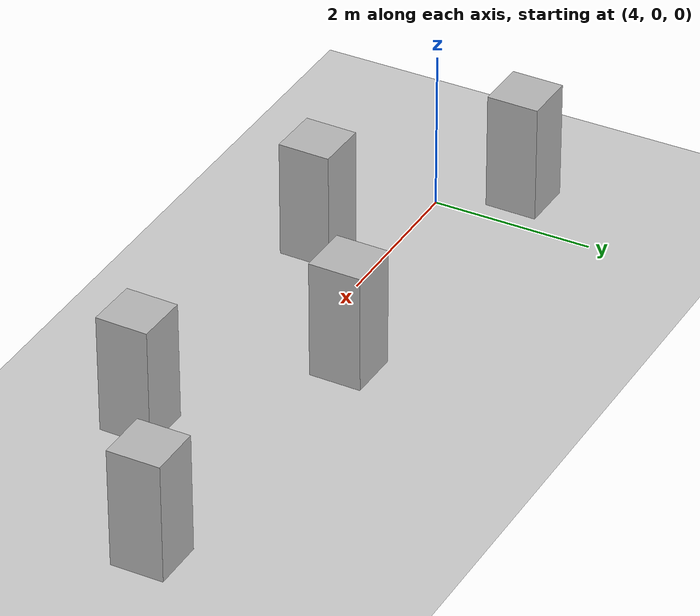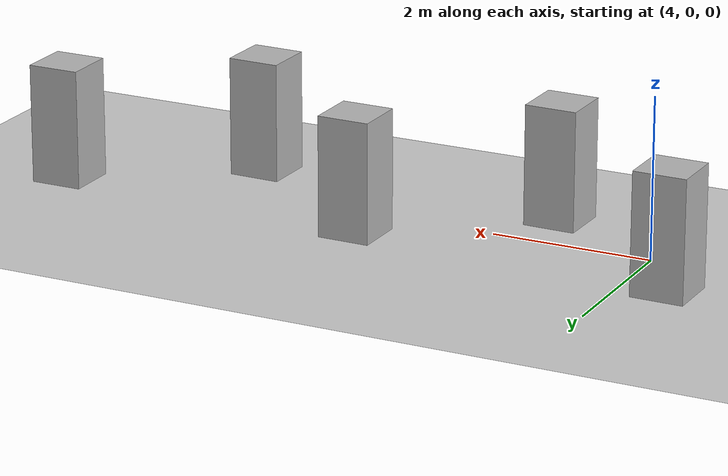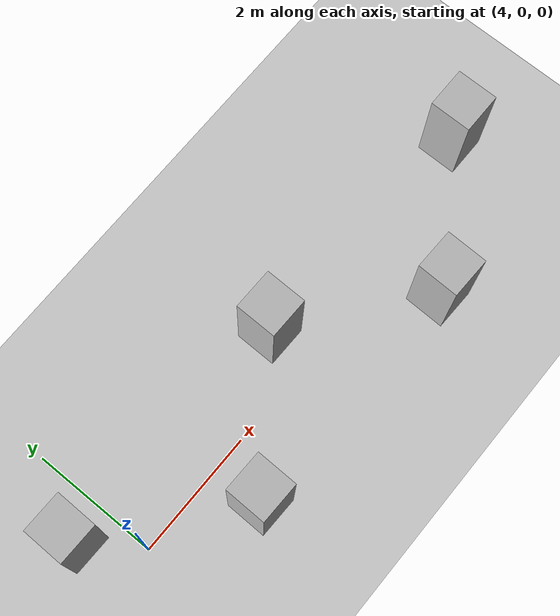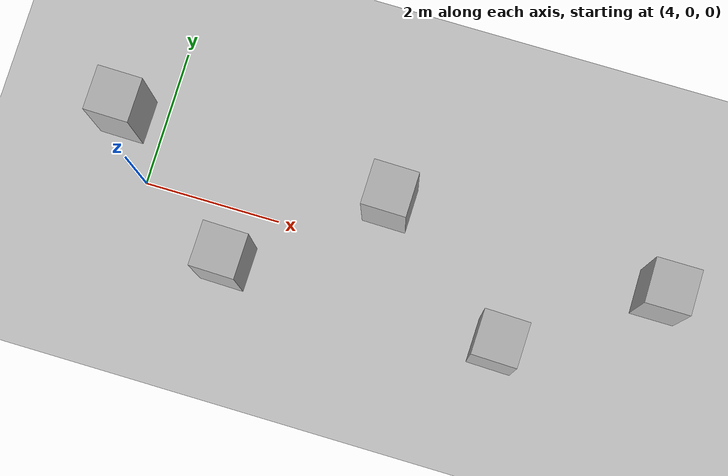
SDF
<?xml version="1.0"?>
<sdf version="1.6">
  <world name="v2-02-static-dense-five-pillars">
    <gravity>0 0 -9.81</gravity>
    <physics name="v2_deterministic" type="ode">
      <max_step_size>0.002</max_step_size>
      <real_time_update_rate>500</real_time_update_rate>
    </physics>
    <include>
      <uri>model://sun</uri>
    </include>
    <include>
      <uri>model://ground_plane</uri>
    </include>
    <model name="pillar-1">
      <static>true</static>
      <pose>3.447173336 0.867979774 0.750000000 0 0 -0.012497608</pose>
      <link name="link">
        <collision name="collision">
          <geometry>
            <box>
              <size>0.650000 0.650000 1.500000</size>
            </box>
          </geometry>
        </collision>
        <visual name="visual">
          <geometry>
            <box>
              <size>0.650000 0.650000 1.500000</size>
            </box>
          </geometry>
        </visual>
      </link>
    </model>
    <model name="pillar-2">
      <static>true</static>
      <pose>5.490834329 -0.782334749 0.750000000 0 0 -0.017404420</pose>
      <link name="link">
        <collision name="collision">
          <geometry>
            <box>
              <size>0.650000 0.650000 1.500000</size>
            </box>
          </geometry>
        </collision>
        <visual name="visual">
          <geometry>
            <box>
              <size>0.650000 0.650000 1.500000</size>
            </box>
          </geometry>
        </visual>
      </link>
    </model>
    <model name="pillar-3">
      <static>true</static>
      <pose>7.480023029 0.689773850 0.750000000 0 0 -0.011702100</pose>
      <link name="link">
        <collision name="collision">
          <geometry>
            <box>
              <size>0.650000 0.650000 1.500000</size>
            </box>
          </geometry>
        </collision>
        <visual name="visual">
          <geometry>
            <box>
              <size>0.650000 0.650000 1.500000</size>
            </box>
          </geometry>
        </visual>
      </link>
    </model>
    <model name="pillar-4">
      <static>true</static>
      <pose>9.489083184 -0.849862866 0.750000000 0 0 -0.022739260</pose>
      <link name="link">
        <collision name="collision">
          <geometry>
            <box>
              <size>0.650000 0.650000 1.500000</size>
            </box>
          </geometry>
        </collision>
        <visual name="visual">
          <geometry>
            <box>
              <size>0.650000 0.650000 1.500000</size>
            </box>
          </geometry>
        </visual>
      </link>
    </model>
    <model name="pillar-5">
      <static>true</static>
      <pose>11.534361830 0.489871384 0.750000000 0 0 0.000201557</pose>
      <link name="link">
        <collision name="collision">
          <geometry>
            <box>
              <size>0.650000 0.650000 1.500000</size>
            </box>
          </geometry>
        </collision>
        <visual name="visual">
          <geometry>
            <box>
              <size>0.650000 0.650000 1.500000</size>
            </box>
          </geometry>
        </visual>
      </link>
    </model>
  </world>
</sdf>
